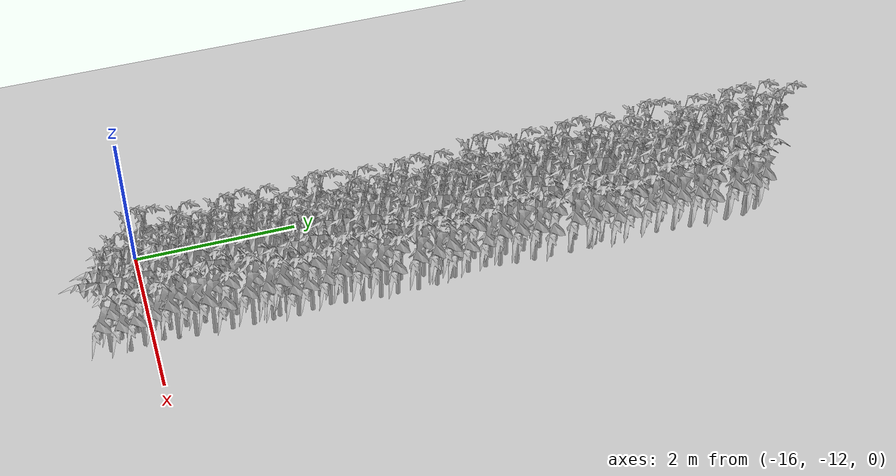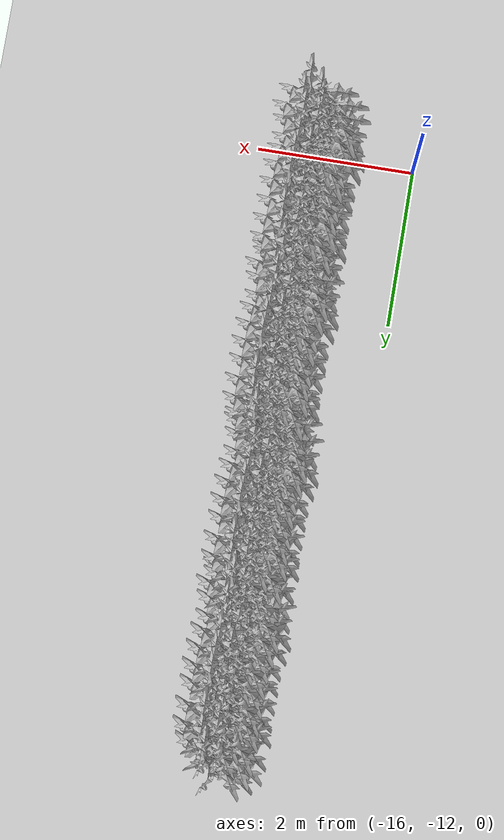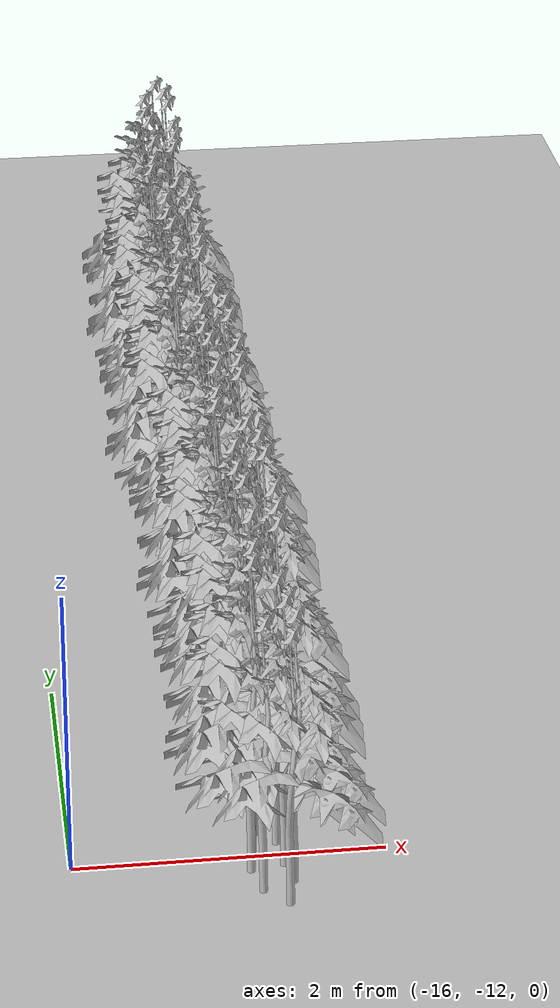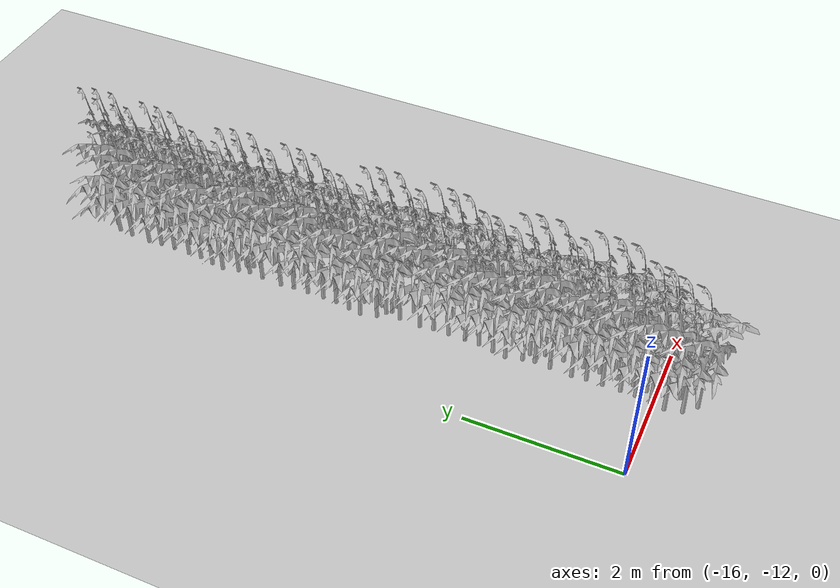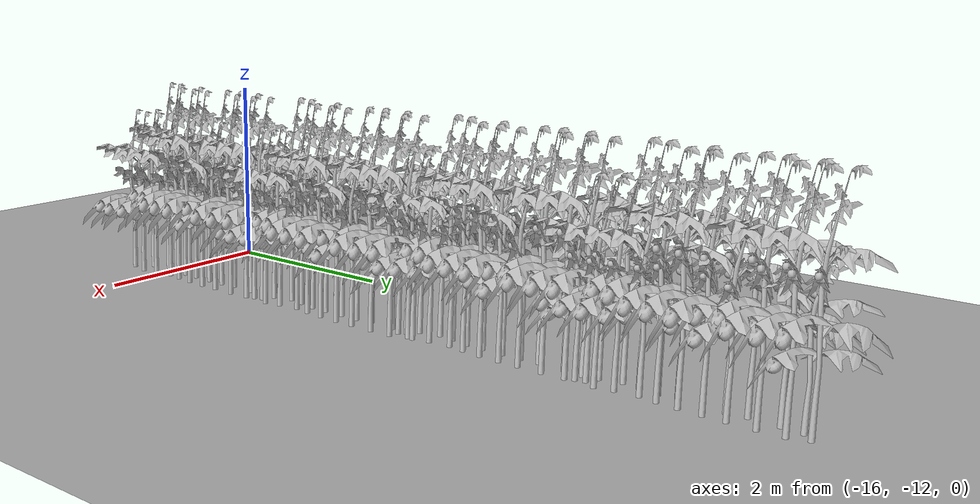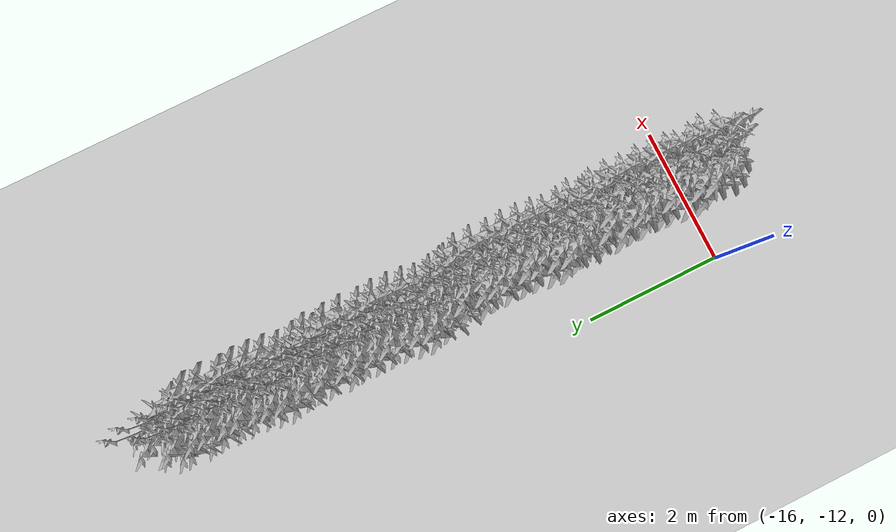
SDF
<sdf version="1.6">
 <world name="default">
  <model name="ground_plane">
   <static>1</static>
   <link name="link">
    <collision name="collision">
     <geometry><plane><normal>0 0 1</normal><size>100 100</size></plane></geometry>
     <surface>
      <contact><collide_bitmask>65535</collide_bitmask></contact>
      <friction><ode><mu>100</mu><mu2>50</mu2></ode></friction>
     </surface>
    </collision>
    <visual name="visual">
     <cast_shadows>0</cast_shadows>
     <geometry><plane><normal>0 0 1</normal><size>100 100</size></plane></geometry>
     <material>
      <script><uri>file://media/materials/scripts/gazebo.material</uri><name>Gazebo/Grey</name></script>
     </material>
    </visual>
   </link>
  </model>
  <model name="MIddle_Plant_3_2">
   <model name="MIddle_Plant_1">
    <model name="tomato_plant_big">
     <static>1</static>
     <link name="link">
      <collision name="collision">
       <pose>0 0 0 1.5708 -0 0</pose>
       <geometry><mesh><scale>0.5 0.6 0.5</scale><uri>model://stick/meshes/stick.dae</uri></mesh></geometry>
      </collision>
      <visual name="visual">
       <geometry>
        <mesh><scale>5e-06 5e-06 7e-06</scale><uri>model://tomato_plant_big/meshes/tomato-plant.dae</uri></mesh>
       </geometry>
      </visual>
     </link>
     <pose>-0.144318 -0.693607 -0 0 -0 0</pose>
    </model>
    <model name="tomato_plant_big_0">
     <static>1</static>
     <link name="link">
      <collision name="collision">
       <pose>0 0 0 1.5708 -0 0</pose>
       <geometry><mesh><scale>0.5 0.6 0.5</scale><uri>model://stick/meshes/stick.dae</uri></mesh></geometry>
      </collision>
      <visual name="visual">
       <geometry>
        <mesh><scale>5e-06 5e-06 7e-06</scale><uri>model://tomato_plant_big/meshes/tomato-plant.dae</uri></mesh>
       </geometry>
      </visual>
     </link>
     <pose>-0.11784 -0.519827 0 0 -0 0</pose>
    </model>
    <model name="tomato_plant_big_1">
     <static>1</static>
     <link name="link">
      <collision name="collision">
       <pose>0 0 0 1.5708 -0 0</pose>
       <geometry><mesh><scale>0.5 0.6 0.5</scale><uri>model://stick/meshes/stick.dae</uri></mesh></geometry>
      </collision>
      <visual name="visual">
       <geometry>
        <mesh><scale>5e-06 5e-06 7e-06</scale><uri>model://tomato_plant_big/meshes/tomato-plant.dae</uri></mesh>
       </geometry>
      </visual>
     </link>
     <pose>0.073755 -0.247584 0 0 -0 0</pose>
    </model>
    <model name="tomato_plant_big_10">
     <static>1</static>
     <link name="link">
      <collision name="collision">
       <pose>0 0 0 1.5708 -0 0</pose>
       <geometry><mesh><scale>0.5 0.6 0.5</scale><uri>model://stick/meshes/stick.dae</uri></mesh></geometry>
      </collision>
      <visual name="visual">
       <geometry>
        <mesh><scale>5e-06 5e-06 7e-06</scale><uri>model://tomato_plant_big/meshes/tomato-plant.dae</uri></mesh>
       </geometry>
      </visual>
     </link>
     <pose>0.037052 1.07094 0 0 -0 0</pose>
    </model>
    <model name="tomato_plant_big_2">
     <static>1</static>
     <link name="link">
      <collision name="collision">
       <pose>0 0 0 1.5708 -0 0</pose>
       <geometry><mesh><scale>0.5 0.6 0.5</scale><uri>model://stick/meshes/stick.dae</uri></mesh></geometry>
      </collision>
      <visual name="visual">
       <geometry>
        <mesh><scale>5e-06 5e-06 7e-06</scale><uri>model://tomato_plant_big/meshes/tomato-plant.dae</uri></mesh>
       </geometry>
      </visual>
     </link>
     <pose>-0.076926 -0.131165 0 0 -0 0</pose>
    </model>
    <model name="tomato_plant_big_3">
     <static>1</static>
     <link name="link">
      <collision name="collision">
       <pose>0 0 0 1.5708 -0 0</pose>
       <geometry><mesh><scale>0.5 0.6 0.5</scale><uri>model://stick/meshes/stick.dae</uri></mesh></geometry>
      </collision>
      <visual name="visual">
       <geometry>
        <mesh><scale>5e-06 5e-06 7e-06</scale><uri>model://tomato_plant_big/meshes/tomato-plant.dae</uri></mesh>
       </geometry>
      </visual>
     </link>
     <pose>0.093714 -0.038386 0 0 -0 0</pose>
    </model>
    <model name="tomato_plant_big_4">
     <static>1</static>
     <link name="link">
      <collision name="collision">
       <pose>0 0 0 1.5708 -0 0</pose>
       <geometry><mesh><scale>0.5 0.6 0.5</scale><uri>model://stick/meshes/stick.dae</uri></mesh></geometry>
      </collision>
      <visual name="visual">
       <geometry>
        <mesh><scale>5e-06 5e-06 7e-06</scale><uri>model://tomato_plant_big/meshes/tomato-plant.dae</uri></mesh>
       </geometry>
      </visual>
     </link>
     <pose>0.103117 0.184356 0 0 -0 0</pose>
    </model>
    <model name="tomato_plant_big_5">
     <static>1</static>
     <link name="link">
      <collision name="collision">
       <pose>0 0 0 1.5708 -0 0</pose>
       <geometry><mesh><scale>0.5 0.6 0.5</scale><uri>model://stick/meshes/stick.dae</uri></mesh></geometry>
      </collision>
      <visual name="visual">
       <geometry>
        <mesh><scale>5e-06 5e-06 7e-06</scale><uri>model://tomato_plant_big/meshes/tomato-plant.dae</uri></mesh>
       </geometry>
      </visual>
     </link>
     <pose>-0.074883 0.301479 0 0 -0 0</pose>
    </model>
    <model name="tomato_plant_big_6">
     <static>1</static>
     <link name="link">
      <collision name="collision">
       <pose>0 0 0 1.5708 -0 0</pose>
       <geometry><mesh><scale>0.5 0.6 0.5</scale><uri>model://stick/meshes/stick.dae</uri></mesh></geometry>
      </collision>
      <visual name="visual">
       <geometry>
        <mesh><scale>5e-06 5e-06 7e-06</scale><uri>model://tomato_plant_big/meshes/tomato-plant.dae</uri></mesh>
       </geometry>
      </visual>
     </link>
     <pose>-0.096921 0.484007 0 0 -0 0</pose>
    </model>
    <model name="tomato_plant_big_7">
     <static>1</static>
     <link name="link">
      <collision name="collision">
       <pose>0 0 0 1.5708 -0 0</pose>
       <geometry><mesh><scale>0.5 0.6 0.5</scale><uri>model://stick/meshes/stick.dae</uri></mesh></geometry>
      </collision>
      <visual name="visual">
       <geometry>
        <mesh><scale>5e-06 5e-06 7e-06</scale><uri>model://tomato_plant_big/meshes/tomato-plant.dae</uri></mesh>
       </geometry>
      </visual>
     </link>
     <pose>0.107491 0.653976 0 0 -0 0</pose>
    </model>
    <model name="tomato_plant_big_8">
     <static>1</static>
     <link name="link">
      <collision name="collision">
       <pose>0 0 0 1.5708 -0 0</pose>
       <geometry><mesh><scale>0.5 0.6 0.5</scale><uri>model://stick/meshes/stick.dae</uri></mesh></geometry>
      </collision>
      <visual name="visual">
       <geometry>
        <mesh><scale>5e-06 5e-06 7e-06</scale><uri>model://tomato_plant_big/meshes/tomato-plant.dae</uri></mesh>
       </geometry>
      </visual>
     </link>
     <pose>-0.07985 0.768549 0 0 -0 0</pose>
    </model>
    <model name="tomato_plant_big_9">
     <static>1</static>
     <link name="link">
      <collision name="collision">
       <pose>0 0 0 1.5708 -0 0</pose>
       <geometry><mesh><scale>0.5 0.6 0.5</scale><uri>model://stick/meshes/stick.dae</uri></mesh></geometry>
      </collision>
      <visual name="visual">
       <geometry>
        <mesh><scale>5e-06 5e-06 7e-06</scale><uri>model://tomato_plant_big/meshes/tomato-plant.dae</uri></mesh>
       </geometry>
      </visual>
     </link>
     <pose>0.098361 0.890852 0 0 -0 0</pose>
    </model>
    <model name="tomato_plant_medium">
     <static>1</static>
     <link name="link">
      <collision name="collision">
       <pose>0 0 0 1.5708 -0 0</pose>
       <geometry><mesh><scale>0.5 0.5 0.5</scale><uri>model://stick/meshes/stick.dae</uri></mesh></geometry>
      </collision>
      <visual name="visual">
       <geometry>
        <mesh><scale>5e-06 5e-06 6e-06</scale><uri>model://tomato_plant_medium/meshes/tomato-plant.dae</uri></mesh>
       </geometry>
      </visual>
     </link>
     <pose>0.056913 -1.05328 0 0 -0 0</pose>
    </model>
    <model name="tomato_plant_medium_0">
     <static>1</static>
     <link name="link">
      <collision name="collision">
       <pose>0 0 0 1.5708 -0 0</pose>
       <geometry><mesh><scale>0.5 0.5 0.5</scale><uri>model://stick/meshes/stick.dae</uri></mesh></geometry>
      </collision>
      <visual name="visual">
       <geometry>
        <mesh><scale>5e-06 5e-06 6e-06</scale><uri>model://tomato_plant_medium/meshes/tomato-plant.dae</uri></mesh>
       </geometry>
      </visual>
     </link>
     <pose>-0.092719 -0.905729 0 0 -0 0</pose>
    </model>
    <model name="tomato_plant_medium_1">
     <static>1</static>
     <link name="link">
      <collision name="collision">
       <pose>0 0 0 1.5708 -0 0</pose>
       <geometry><mesh><scale>0.5 0.5 0.5</scale><uri>model://stick/meshes/stick.dae</uri></mesh></geometry>
      </collision>
      <visual name="visual">
       <geometry>
        <mesh><scale>5e-06 5e-06 6e-06</scale><uri>model://tomato_plant_medium/meshes/tomato-plant.dae</uri></mesh>
       </geometry>
      </visual>
     </link>
     <pose>0.108962 -0.829637 0 0 -0 0</pose>
    </model>
    <model name="tomato_plant_medium_2">
     <static>1</static>
     <link name="link">
      <collision name="collision">
       <pose>0 0 0 1.5708 -0 0</pose>
       <geometry><mesh><scale>0.5 0.5 0.5</scale><uri>model://stick/meshes/stick.dae</uri></mesh></geometry>
      </collision>
      <visual name="visual">
       <geometry>
        <mesh><scale>5e-06 5e-06 6e-06</scale><uri>model://tomato_plant_medium/meshes/tomato-plant.dae</uri></mesh>
       </geometry>
      </visual>
     </link>
     <pose>0.071216 -0.652507 0 0 -0 0</pose>
    </model>
    <model name="tomato_plant_medium_3">
     <static>1</static>
     <link name="link">
      <collision name="collision">
       <pose>0 0 0 1.5708 -0 0</pose>
       <geometry><mesh><scale>0.5 0.5 0.5</scale><uri>model://stick/meshes/stick.dae</uri></mesh></geometry>
      </collision>
      <visual name="visual">
       <geometry>
        <mesh><scale>5e-06 5e-06 6e-06</scale><uri>model://tomato_plant_medium/meshes/tomato-plant.dae</uri></mesh>
       </geometry>
      </visual>
     </link>
     <pose>0.047335 -0.423046 0 0 -0 0</pose>
    </model>
    <model name="tomato_plant_medium_4">
     <static>1</static>
     <link name="link">
      <collision name="collision">
       <pose>0 0 0 1.5708 -0 0</pose>
       <geometry><mesh><scale>0.5 0.5 0.5</scale><uri>model://stick/meshes/stick.dae</uri></mesh></geometry>
      </collision>
      <visual name="visual">
       <geometry>
        <mesh><scale>5e-06 5e-06 6e-06</scale><uri>model://tomato_plant_medium/meshes/tomato-plant.dae</uri></mesh>
       </geometry>
      </visual>
     </link>
     <pose>-0.081012 -0.320324 0 0 -0 0</pose>
    </model>
    <model name="tomato_plant_medium_5">
     <static>1</static>
     <link name="link">
      <collision name="collision">
       <pose>0 0 0 1.5708 -0 0</pose>
       <geometry><mesh><scale>0.5 0.5 0.5</scale><uri>model://stick/meshes/stick.dae</uri></mesh></geometry>
      </collision>
      <visual name="visual">
       <geometry>
        <mesh><scale>5e-06 5e-06 6e-06</scale><uri>model://tomato_plant_medium/meshes/tomato-plant.dae</uri></mesh>
       </geometry>
      </visual>
     </link>
     <pose>-0.07452 0.095988 0 0 -0 0</pose>
    </model>
    <model name="tomato_plant_medium_6">
     <static>1</static>
     <link name="link">
      <collision name="collision">
       <pose>0 0 0 1.5708 -0 0</pose>
       <geometry><mesh><scale>0.5 0.5 0.5</scale><uri>model://stick/meshes/stick.dae</uri></mesh></geometry>
      </collision>
      <visual name="visual">
       <geometry>
        <mesh><scale>5e-06 5e-06 6e-06</scale><uri>model://tomato_plant_medium/meshes/tomato-plant.dae</uri></mesh>
       </geometry>
      </visual>
     </link>
     <pose>0.101424 0.395443 0 0 -0 0</pose>
    </model>
    <model name="tomato_plant_small">
     <static>1</static>
     <link name="link">
      <collision name="collision">
       <pose>0 0 0 1.5708 -0 0</pose>
       <geometry><mesh><scale>0.5 0.45 0.5</scale><uri>model://stick/meshes/stick.dae</uri></mesh></geometry>
      </collision>
      <visual name="visual">
       <geometry>
        <mesh><scale>5e-06 5e-06 5e-06</scale><uri>model://tomato_plant_small/meshes/tomato-plant.dae</uri></mesh>
       </geometry>
      </visual>
     </link>
     <pose>-0.060351 0.969512 0 0 -0 0</pose>
    </model>
    <static>0</static>
    <pose>0.040757 1.77284 0 0 -0 0</pose>
   </model>
   <model name="MIddle_Plant_2">
    <model name="MIddle_Plant_1">
     <model name="tomato_plant_big">
      <static>1</static>
      <link name="link">
       <collision name="collision">
        <pose>0 0 0 1.5708 -0 0</pose>
        <geometry><mesh><scale>0.5 0.6 0.5</scale><uri>model://stick/meshes/stick.dae</uri></mesh></geometry>
       </collision>
       <visual name="visual">
        <geometry>
         <mesh><scale>5e-06 5e-06 7e-06</scale><uri>model://tomato_plant_big/meshes/tomato-plant.dae</uri></mesh>
        </geometry>
       </visual>
      </link>
      <pose>-0.144318 -0.693607 -0 0 -0 0</pose>
     </model>
     <model name="tomato_plant_big_0">
      <static>1</static>
      <link name="link">
       <collision name="collision">
        <pose>0 0 0 1.5708 -0 0</pose>
        <geometry><mesh><scale>0.5 0.6 0.5</scale><uri>model://stick/meshes/stick.dae</uri></mesh></geometry>
       </collision>
       <visual name="visual">
        <geometry>
         <mesh><scale>5e-06 5e-06 7e-06</scale><uri>model://tomato_plant_big/meshes/tomato-plant.dae</uri></mesh>
        </geometry>
       </visual>
      </link>
      <pose>-0.11784 -0.519827 0 0 -0 0</pose>
     </model>
     <model name="tomato_plant_big_1">
      <static>1</static>
      <link name="link">
       <collision name="collision">
        <pose>0 0 0 1.5708 -0 0</pose>
        <geometry><mesh><scale>0.5 0.6 0.5</scale><uri>model://stick/meshes/stick.dae</uri></mesh></geometry>
       </collision>
       <visual name="visual">
        <geometry>
         <mesh><scale>5e-06 5e-06 7e-06</scale><uri>model://tomato_plant_big/meshes/tomato-plant.dae</uri></mesh>
        </geometry>
       </visual>
      </link>
      <pose>0.073755 -0.247584 0 0 -0 0</pose>
     </model>
     <model name="tomato_plant_big_10">
      <static>1</static>
      <link name="link">
       <collision name="collision">
        <pose>0 0 0 1.5708 -0 0</pose>
        <geometry><mesh><scale>0.5 0.6 0.5</scale><uri>model://stick/meshes/stick.dae</uri></mesh></geometry>
       </collision>
       <visual name="visual">
        <geometry>
         <mesh><scale>5e-06 5e-06 7e-06</scale><uri>model://tomato_plant_big/meshes/tomato-plant.dae</uri></mesh>
        </geometry>
       </visual>
      </link>
      <pose>0.037052 1.07094 0 0 -0 0</pose>
     </model>
     <model name="tomato_plant_big_2">
      <static>1</static>
      <link name="link">
       <collision name="collision">
        <pose>0 0 0 1.5708 -0 0</pose>
        <geometry><mesh><scale>0.5 0.6 0.5</scale><uri>model://stick/meshes/stick.dae</uri></mesh></geometry>
       </collision>
       <visual name="visual">
        <geometry>
         <mesh><scale>5e-06 5e-06 7e-06</scale><uri>model://tomato_plant_big/meshes/tomato-plant.dae</uri></mesh>
        </geometry>
       </visual>
      </link>
      <pose>-0.076926 -0.131165 0 0 -0 0</pose>
     </model>
     <model name="tomato_plant_big_3">
      <static>1</static>
      <link name="link">
       <collision name="collision">
        <pose>0 0 0 1.5708 -0 0</pose>
        <geometry><mesh><scale>0.5 0.6 0.5</scale><uri>model://stick/meshes/stick.dae</uri></mesh></geometry>
       </collision>
       <visual name="visual">
        <geometry>
         <mesh><scale>5e-06 5e-06 7e-06</scale><uri>model://tomato_plant_big/meshes/tomato-plant.dae</uri></mesh>
        </geometry>
       </visual>
      </link>
      <pose>0.093714 -0.038386 0 0 -0 0</pose>
     </model>
     <model name="tomato_plant_big_4">
      <static>1</static>
      <link name="link">
       <collision name="collision">
        <pose>0 0 0 1.5708 -0 0</pose>
        <geometry><mesh><scale>0.5 0.6 0.5</scale><uri>model://stick/meshes/stick.dae</uri></mesh></geometry>
       </collision>
       <visual name="visual">
        <geometry>
         <mesh><scale>5e-06 5e-06 7e-06</scale><uri>model://tomato_plant_big/meshes/tomato-plant.dae</uri></mesh>
        </geometry>
       </visual>
      </link>
      <pose>0.103117 0.184356 0 0 -0 0</pose>
     </model>
     <model name="tomato_plant_big_5">
      <static>1</static>
      <link name="link">
       <collision name="collision">
        <pose>0 0 0 1.5708 -0 0</pose>
        <geometry><mesh><scale>0.5 0.6 0.5</scale><uri>model://stick/meshes/stick.dae</uri></mesh></geometry>
       </collision>
       <visual name="visual">
        <geometry>
         <mesh><scale>5e-06 5e-06 7e-06</scale><uri>model://tomato_plant_big/meshes/tomato-plant.dae</uri></mesh>
        </geometry>
       </visual>
      </link>
      <pose>-0.074883 0.301479 0 0 -0 0</pose>
     </model>
     <model name="tomato_plant_big_6">
      <static>1</static>
      <link name="link">
       <collision name="collision">
        <pose>0 0 0 1.5708 -0 0</pose>
        <geometry><mesh><scale>0.5 0.6 0.5</scale><uri>model://stick/meshes/stick.dae</uri></mesh></geometry>
       </collision>
       <visual name="visual">
        <geometry>
         <mesh><scale>5e-06 5e-06 7e-06</scale><uri>model://tomato_plant_big/meshes/tomato-plant.dae</uri></mesh>
        </geometry>
       </visual>
      </link>
      <pose>-0.096921 0.484007 0 0 -0 0</pose>
     </model>
     <model name="tomato_plant_big_7">
      <static>1</static>
      <link name="link">
       <collision name="collision">
        <pose>0 0 0 1.5708 -0 0</pose>
        <geometry><mesh><scale>0.5 0.6 0.5</scale><uri>model://stick/meshes/stick.dae</uri></mesh></geometry>
       </collision>
       <visual name="visual">
        <geometry>
         <mesh><scale>5e-06 5e-06 7e-06</scale><uri>model://tomato_plant_big/meshes/tomato-plant.dae</uri></mesh>
        </geometry>
       </visual>
      </link>
      <pose>0.107491 0.653976 0 0 -0 0</pose>
     </model>
     <model name="tomato_plant_big_8">
      <static>1</static>
      <link name="link">
       <collision name="collision">
        <pose>0 0 0 1.5708 -0 0</pose>
        <geometry><mesh><scale>0.5 0.6 0.5</scale><uri>model://stick/meshes/stick.dae</uri></mesh></geometry>
       </collision>
       <visual name="visual">
        <geometry>
         <mesh><scale>5e-06 5e-06 7e-06</scale><uri>model://tomato_plant_big/meshes/tomato-plant.dae</uri></mesh>
        </geometry>
       </visual>
      </link>
      <pose>-0.07985 0.768549 0 0 -0 0</pose>
     </model>
     <model name="tomato_plant_big_9">
      <static>1</static>
      <link name="link">
       <collision name="collision">
        <pose>0 0 0 1.5708 -0 0</pose>
        <geometry><mesh><scale>0.5 0.6 0.5</scale><uri>model://stick/meshes/stick.dae</uri></mesh></geometry>
       </collision>
       <visual name="visual">
        <geometry>
         <mesh><scale>5e-06 5e-06 7e-06</scale><uri>model://tomato_plant_big/meshes/tomato-plant.dae</uri></mesh>
        </geometry>
       </visual>
      </link>
      <pose>0.098361 0.890852 0 0 -0 0</pose>
     </model>
     <model name="tomato_plant_medium">
      <static>1</static>
      <link name="link">
       <collision name="collision">
        <pose>0 0 0 1.5708 -0 0</pose>
        <geometry><mesh><scale>0.5 0.5 0.5</scale><uri>model://stick/meshes/stick.dae</uri></mesh></geometry>
       </collision>
       <visual name="visual">
        <geometry>
         <mesh><scale>5e-06 5e-06 6e-06</scale><uri>model://tomato_plant_medium/meshes/tomato-plant.dae</uri></mesh>
        </geometry>
       </visual>
      </link>
      <pose>0.056913 -1.05328 0 0 -0 0</pose>
     </model>
     <model name="tomato_plant_medium_0">
      <static>1</static>
      <link name="link">
       <collision name="collision">
        <pose>0 0 0 1.5708 -0 0</pose>
        <geometry><mesh><scale>0.5 0.5 0.5</scale><uri>model://stick/meshes/stick.dae</uri></mesh></geometry>
       </collision>
       <visual name="visual">
        <geometry>
         <mesh><scale>5e-06 5e-06 6e-06</scale><uri>model://tomato_plant_medium/meshes/tomato-plant.dae</uri></mesh>
        </geometry>
       </visual>
      </link>
      <pose>-0.092719 -0.905729 0 0 -0 0</pose>
     </model>
     <model name="tomato_plant_medium_1">
      <static>1</static>
      <link name="link">
       <collision name="collision">
        <pose>0 0 0 1.5708 -0 0</pose>
        <geometry><mesh><scale>0.5 0.5 0.5</scale><uri>model://stick/meshes/stick.dae</uri></mesh></geometry>
       </collision>
       <visual name="visual">
        <geometry>
         <mesh><scale>5e-06 5e-06 6e-06</scale><uri>model://tomato_plant_medium/meshes/tomato-plant.dae</uri></mesh>
        </geometry>
       </visual>
      </link>
      <pose>0.108962 -0.829637 0 0 -0 0</pose>
     </model>
     <model name="tomato_plant_medium_2">
      <static>1</static>
      <link name="link">
       <collision name="collision">
        <pose>0 0 0 1.5708 -0 0</pose>
        <geometry><mesh><scale>0.5 0.5 0.5</scale><uri>model://stick/meshes/stick.dae</uri></mesh></geometry>
       </collision>
       <visual name="visual">
        <geometry>
         <mesh><scale>5e-06 5e-06 6e-06</scale><uri>model://tomato_plant_medium/meshes/tomato-plant.dae</uri></mesh>
        </geometry>
       </visual>
      </link>
      <pose>0.071216 -0.652507 0 0 -0 0</pose>
     </model>
     <model name="tomato_plant_medium_3">
      <static>1</static>
      <link name="link">
       <collision name="collision">
        <pose>0 0 0 1.5708 -0 0</pose>
        <geometry><mesh><scale>0.5 0.5 0.5</scale><uri>model://stick/meshes/stick.dae</uri></mesh></geometry>
       </collision>
       <visual name="visual">
        <geometry>
         <mesh><scale>5e-06 5e-06 6e-06</scale><uri>model://tomato_plant_medium/meshes/tomato-plant.dae</uri></mesh>
        </geometry>
       </visual>
      </link>
      <pose>0.047335 -0.423046 0 0 -0 0</pose>
     </model>
     <model name="tomato_plant_medium_4">
      <static>1</static>
      <link name="link">
       <collision name="collision">
        <pose>0 0 0 1.5708 -0 0</pose>
        <geometry><mesh><scale>0.5 0.5 0.5</scale><uri>model://stick/meshes/stick.dae</uri></mesh></geometry>
       </collision>
       <visual name="visual">
        <geometry>
         <mesh><scale>5e-06 5e-06 6e-06</scale><uri>model://tomato_plant_medium/meshes/tomato-plant.dae</uri></mesh>
        </geometry>
       </visual>
      </link>
      <pose>-0.081012 -0.320324 0 0 -0 0</pose>
     </model>
     <model name="tomato_plant_medium_5">
      <static>1</static>
      <link name="link">
       <collision name="collision">
        <pose>0 0 0 1.5708 -0 0</pose>
        <geometry><mesh><scale>0.5 0.5 0.5</scale><uri>model://stick/meshes/stick.dae</uri></mesh></geometry>
       </collision>
       <visual name="visual">
        <geometry>
         <mesh><scale>5e-06 5e-06 6e-06</scale><uri>model://tomato_plant_medium/meshes/tomato-plant.dae</uri></mesh>
        </geometry>
       </visual>
      </link>
      <pose>-0.07452 0.095988 0 0 -0 0</pose>
     </model>
     <model name="tomato_plant_medium_6">
      <static>1</static>
      <link name="link">
       <collision name="collision">
        <pose>0 0 0 1.5708 -0 0</pose>
        <geometry><mesh><scale>0.5 0.5 0.5</scale><uri>model://stick/meshes/stick.dae</uri></mesh></geometry>
       </collision>
       <visual name="visual">
        <geometry>
         <mesh><scale>5e-06 5e-06 6e-06</scale><uri>model://tomato_plant_medium/meshes/tomato-plant.dae</uri></mesh>
        </geometry>
       </visual>
      </link>
      <pose>0.101424 0.395443 0 0 -0 0</pose>
     </model>
     <model name="tomato_plant_small">
      <static>1</static>
      <link name="link">
       <collision name="collision">
        <pose>0 0 0 1.5708 -0 0</pose>
        <geometry><mesh><scale>0.5 0.45 0.5</scale><uri>model://stick/meshes/stick.dae</uri></mesh></geometry>
       </collision>
       <visual name="visual">
        <geometry>
         <mesh><scale>5e-06 5e-06 5e-06</scale><uri>model://tomato_plant_small/meshes/tomato-plant.dae</uri></mesh>
        </geometry>
       </visual>
      </link>
      <pose>-0.060351 0.969512 0 0 -0 0</pose>
     </model>
     <static>0</static>
     <pose>0.763113 0.028917 0 0 -0 0</pose>
    </model>
    <model name="tomato_plant_big">
     <static>1</static>
     <link name="link">
      <collision name="collision">
       <pose>0 0 0 1.5708 -0 0</pose>
       <geometry><mesh><scale>0.5 0.6 0.5</scale><uri>model://stick/meshes/stick.dae</uri></mesh></geometry>
      </collision>
      <visual name="visual">
       <geometry>
        <mesh><scale>5e-06 5e-06 7e-06</scale><uri>model://tomato_plant_big/meshes/tomato-plant.dae</uri></mesh>
       </geometry>
      </visual>
     </link>
     <pose>0.613724 -2.69399 -0 0 -0 0</pose>
    </model>
    <model name="tomato_plant_big_0">
     <static>1</static>
     <link name="link">
      <collision name="collision">
       <pose>0 0 0 1.5708 -0 0</pose>
       <geometry><mesh><scale>0.5 0.6 0.5</scale><uri>model://stick/meshes/stick.dae</uri></mesh></geometry>
      </collision>
      <visual name="visual">
       <geometry>
        <mesh><scale>5e-06 5e-06 7e-06</scale><uri>model://tomato_plant_big/meshes/tomato-plant.dae</uri></mesh>
       </geometry>
      </visual>
     </link>
     <pose>0.640202 -2.52021 0 0 -0 0</pose>
    </model>
    <model name="tomato_plant_big_1">
     <static>1</static>
     <link name="link">
      <collision name="collision">
       <pose>0 0 0 1.5708 -0 0</pose>
       <geometry><mesh><scale>0.5 0.6 0.5</scale><uri>model://stick/meshes/stick.dae</uri></mesh></geometry>
      </collision>
      <visual name="visual">
       <geometry>
        <mesh><scale>5e-06 5e-06 7e-06</scale><uri>model://tomato_plant_big/meshes/tomato-plant.dae</uri></mesh>
       </geometry>
      </visual>
     </link>
     <pose>0.831797 -2.24797 0 0 -0 0</pose>
    </model>
    <model name="tomato_plant_big_10">
     <static>1</static>
     <link name="link">
      <collision name="collision">
       <pose>0 0 0 1.5708 -0 0</pose>
       <geometry><mesh><scale>0.5 0.6 0.5</scale><uri>model://stick/meshes/stick.dae</uri></mesh></geometry>
      </collision>
      <visual name="visual">
       <geometry>
        <mesh><scale>5e-06 5e-06 7e-06</scale><uri>model://tomato_plant_big/meshes/tomato-plant.dae</uri></mesh>
       </geometry>
      </visual>
     </link>
     <pose>0.795094 -0.929446 0 0 -0 0</pose>
    </model>
    <model name="tomato_plant_big_2">
     <static>1</static>
     <link name="link">
      <collision name="collision">
       <pose>0 0 0 1.5708 -0 0</pose>
       <geometry><mesh><scale>0.5 0.6 0.5</scale><uri>model://stick/meshes/stick.dae</uri></mesh></geometry>
      </collision>
      <visual name="visual">
       <geometry>
        <mesh><scale>5e-06 5e-06 7e-06</scale><uri>model://tomato_plant_big/meshes/tomato-plant.dae</uri></mesh>
       </geometry>
      </visual>
     </link>
     <pose>0.681116 -2.13155 0 0 -0 0</pose>
    </model>
    <model name="tomato_plant_big_3">
     <static>1</static>
     <link name="link">
      <collision name="collision">
       <pose>0 0 0 1.5708 -0 0</pose>
       <geometry><mesh><scale>0.5 0.6 0.5</scale><uri>model://stick/meshes/stick.dae</uri></mesh></geometry>
      </collision>
      <visual name="visual">
       <geometry>
        <mesh><scale>5e-06 5e-06 7e-06</scale><uri>model://tomato_plant_big/meshes/tomato-plant.dae</uri></mesh>
       </geometry>
      </visual>
     </link>
     <pose>0.851755 -2.03877 0 0 -0 0</pose>
    </model>
    <model name="tomato_plant_big_4">
     <static>1</static>
     <link name="link">
      <collision name="collision">
       <pose>0 0 0 1.5708 -0 0</pose>
       <geometry><mesh><scale>0.5 0.6 0.5</scale><uri>model://stick/meshes/stick.dae</uri></mesh></geometry>
      </collision>
      <visual name="visual">
       <geometry>
        <mesh><scale>5e-06 5e-06 7e-06</scale><uri>model://tomato_plant_big/meshes/tomato-plant.dae</uri></mesh>
       </geometry>
      </visual>
     </link>
     <pose>0.861158 -1.81603 0 0 -0 0</pose>
    </model>
    <model name="tomato_plant_big_5">
     <static>1</static>
     <link name="link">
      <collision name="collision">
       <pose>0 0 0 1.5708 -0 0</pose>
       <geometry><mesh><scale>0.5 0.6 0.5</scale><uri>model://stick/meshes/stick.dae</uri></mesh></geometry>
      </collision>
      <visual name="visual">
       <geometry>
        <mesh><scale>5e-06 5e-06 7e-06</scale><uri>model://tomato_plant_big/meshes/tomato-plant.dae</uri></mesh>
       </geometry>
      </visual>
     </link>
     <pose>0.683158 -1.69891 0 0 -0 0</pose>
    </model>
    <model name="tomato_plant_big_6">
     <static>1</static>
     <link name="link">
      <collision name="collision">
       <pose>0 0 0 1.5708 -0 0</pose>
       <geometry><mesh><scale>0.5 0.6 0.5</scale><uri>model://stick/meshes/stick.dae</uri></mesh></geometry>
      </collision>
      <visual name="visual">
       <geometry>
        <mesh><scale>5e-06 5e-06 7e-06</scale><uri>model://tomato_plant_big/meshes/tomato-plant.dae</uri></mesh>
       </geometry>
      </visual>
     </link>
     <pose>0.66112 -1.51638 0 0 -0 0</pose>
    </model>
    <model name="tomato_plant_big_7">
     <static>1</static>
     <link name="link">
      <collision name="collision">
       <pose>0 0 0 1.5708 -0 0</pose>
       <geometry><mesh><scale>0.5 0.6 0.5</scale><uri>model://stick/meshes/stick.dae</uri></mesh></geometry>
      </collision>
      <visual name="visual">
       <geometry>
        <mesh><scale>5e-06 5e-06 7e-06</scale><uri>model://tomato_plant_big/meshes/tomato-plant.dae</uri></mesh>
       </geometry>
      </visual>
     </link>
     <pose>0.865532 -1.34641 0 0 -0 0</pose>
    </model>
    <model name="tomato_plant_big_8">
     <static>1</static>
     <link name="link">
      <collision name="collision">
       <pose>0 0 0 1.5708 -0 0</pose>
       <geometry><mesh><scale>0.5 0.6 0.5</scale><uri>model://stick/meshes/stick.dae</uri></mesh></geometry>
      </collision>
      <visual name="visual">
       <geometry>
        <mesh><scale>5e-06 5e-06 7e-06</scale><uri>model://tomato_plant_big/meshes/tomato-plant.dae</uri></mesh>
       </geometry>
      </visual>
     </link>
     <pose>0.678192 -1.23184 0 0 -0 0</pose>
    </model>
    <model name="tomato_plant_big_9">
     <static>1</static>
     <link name="link">
      <collision name="collision">
       <pose>0 0 0 1.5708 -0 0</pose>
       <geometry><mesh><scale>0.5 0.6 0.5</scale><uri>model://stick/meshes/stick.dae</uri></mesh></geometry>
      </collision>
      <visual name="visual">
       <geometry>
        <mesh><scale>5e-06 5e-06 7e-06</scale><uri>model://tomato_plant_big/meshes/tomato-plant.dae</uri></mesh>
       </geometry>
      </visual>
     </link>
     <pose>0.856402 -1.10953 0 0 -0 0</pose>
    </model>
    <model name="tomato_plant_medium">
     <static>1</static>
     <link name="link">
      <collision name="collision">
       <pose>0 0 0 1.5708 -0 0</pose>
       <geometry><mesh><scale>0.5 0.5 0.5</scale><uri>model://stick/meshes/stick.dae</uri></mesh></geometry>
      </collision>
      <visual name="visual">
       <geometry>
        <mesh><scale>5e-06 5e-06 6e-06</scale><uri>model://tomato_plant_medium/meshes/tomato-plant.dae</uri></mesh>
       </geometry>
      </visual>
     </link>
     <pose>0.814955 -3.05367 0 0 -0 0</pose>
    </model>
    <model name="tomato_plant_medium_0">
     <static>1</static>
     <link name="link">
      <collision name="collision">
       <pose>0 0 0 1.5708 -0 0</pose>
       <geometry><mesh><scale>0.5 0.5 0.5</scale><uri>model://stick/meshes/stick.dae</uri></mesh></geometry>
      </collision>
      <visual name="visual">
       <geometry>
        <mesh><scale>5e-06 5e-06 6e-06</scale><uri>model://tomato_plant_medium/meshes/tomato-plant.dae</uri></mesh>
       </geometry>
      </visual>
     </link>
     <pose>0.665322 -2.90611 0 0 -0 0</pose>
    </model>
    <model name="tomato_plant_medium_1">
     <static>1</static>
     <link name="link">
      <collision name="collision">
       <pose>0 0 0 1.5708 -0 0</pose>
       <geometry><mesh><scale>0.5 0.5 0.5</scale><uri>model://stick/meshes/stick.dae</uri></mesh></geometry>
      </collision>
      <visual name="visual">
       <geometry>
        <mesh><scale>5e-06 5e-06 6e-06</scale><uri>model://tomato_plant_medium/meshes/tomato-plant.dae</uri></mesh>
       </geometry>
      </visual>
     </link>
     <pose>0.867004 -2.83002 0 0 -0 0</pose>
    </model>
    <model name="tomato_plant_medium_2">
     <static>1</static>
     <link name="link">
      <collision name="collision">
       <pose>0 0 0 1.5708 -0 0</pose>
       <geometry><mesh><scale>0.5 0.5 0.5</scale><uri>model://stick/meshes/stick.dae</uri></mesh></geometry>
      </collision>
      <visual name="visual">
       <geometry>
        <mesh><scale>5e-06 5e-06 6e-06</scale><uri>model://tomato_plant_medium/meshes/tomato-plant.dae</uri></mesh>
       </geometry>
      </visual>
     </link>
     <pose>0.829257 -2.65289 0 0 -0 0</pose>
    </model>
    <model name="tomato_plant_medium_3">
     <static>1</static>
     <link name="link">
      <collision name="collision">
       <pose>0 0 0 1.5708 -0 0</pose>
       <geometry><mesh><scale>0.5 0.5 0.5</scale><uri>model://stick/meshes/stick.dae</uri></mesh></geometry>
      </collision>
      <visual name="visual">
       <geometry>
        <mesh><scale>5e-06 5e-06 6e-06</scale><uri>model://tomato_plant_medium/meshes/tomato-plant.dae</uri></mesh>
       </geometry>
      </visual>
     </link>
     <pose>0.805376 -2.42343 0 0 -0 0</pose>
    </model>
    <model name="tomato_plant_medium_4">
     <static>1</static>
     <link name="link">
      <collision name="collision">
       <pose>0 0 0 1.5708 -0 0</pose>
       <geometry><mesh><scale>0.5 0.5 0.5</scale><uri>model://stick/meshes/stick.dae</uri></mesh></geometry>
      </collision>
      <visual name="visual">
       <geometry>
        <mesh><scale>5e-06 5e-06 6e-06</scale><uri>model://tomato_plant_medium/meshes/tomato-plant.dae</uri></mesh>
       </geometry>
      </visual>
     </link>
     <pose>0.67703 -2.32071 0 0 -0 0</pose>
    </model>
    <model name="tomato_plant_medium_5">
     <static>1</static>
     <link name="link">
      <collision name="collision">
       <pose>0 0 0 1.5708 -0 0</pose>
       <geometry><mesh><scale>0.5 0.5 0.5</scale><uri>model://stick/meshes/stick.dae</uri></mesh></geometry>
      </collision>
      <visual name="visual">
       <geometry>
        <mesh><scale>5e-06 5e-06 6e-06</scale><uri>model://tomato_plant_medium/meshes/tomato-plant.dae</uri></mesh>
       </geometry>
      </visual>
     </link>
     <pose>0.683522 -1.9044 0 0 -0 0</pose>
    </model>
    <model name="tomato_plant_medium_6">
     <static>1</static>
     <link name="link">
      <collision name="collision">
       <pose>0 0 0 1.5708 -0 0</pose>
       <geometry><mesh><scale>0.5 0.5 0.5</scale><uri>model://stick/meshes/stick.dae</uri></mesh></geometry>
      </collision>
      <visual name="visual">
       <geometry>
        <mesh><scale>5e-06 5e-06 6e-06</scale><uri>model://tomato_plant_medium/meshes/tomato-plant.dae</uri></mesh>
       </geometry>
      </visual>
     </link>
     <pose>0.859466 -1.60494 0 0 -0 0</pose>
    </model>
    <model name="tomato_plant_small">
     <static>1</static>
     <link name="link">
      <collision name="collision">
       <pose>0 0 0 1.5708 -0 0</pose>
       <geometry><mesh><scale>0.5 0.45 0.5</scale><uri>model://stick/meshes/stick.dae</uri></mesh></geometry>
      </collision>
      <visual name="visual">
       <geometry>
        <mesh><scale>5e-06 5e-06 5e-06</scale><uri>model://tomato_plant_small/meshes/tomato-plant.dae</uri></mesh>
       </geometry>
      </visual>
     </link>
     <pose>0.697691 -1.03087 0 0 -0 0</pose>
    </model>
    <static>0</static>
    <pose>-0.78485 5.73439 0 0 -0 0</pose>
   </model>
   <model name="tomato_plant_big">
    <static>1</static>
    <link name="link">
     <collision name="collision">
      <pose>0 0 0 1.5708 -0 0</pose>
      <geometry><mesh><scale>0.5 0.6 0.5</scale><uri>model://stick/meshes/stick.dae</uri></mesh></geometry>
     </collision>
     <visual name="visual">
      <geometry>
       <mesh><scale>5e-06 5e-06 7e-06</scale><uri>model://tomato_plant_big/meshes/tomato-plant.dae</uri></mesh>
      </geometry>
     </visual>
    </link>
    <pose>-0.108632 -0.950068 -0 0 -0 0</pose>
   </model>
   <model name="tomato_plant_big_0">
    <static>1</static>
    <link name="link">
     <collision name="collision">
      <pose>0 0 0 1.5708 -0 0</pose>
      <geometry><mesh><scale>0.5 0.6 0.5</scale><uri>model://stick/meshes/stick.dae</uri></mesh></geometry>
     </collision>
     <visual name="visual">
      <geometry>
       <mesh><scale>5e-06 5e-06 7e-06</scale><uri>model://tomato_plant_big/meshes/tomato-plant.dae</uri></mesh>
      </geometry>
     </visual>
    </link>
    <pose>-0.082154 -0.776288 0 0 -0 0</pose>
   </model>
   <model name="tomato_plant_big_1">
    <static>1</static>
    <link name="link">
     <collision name="collision">
      <pose>0 0 0 1.5708 -0 0</pose>
      <geometry><mesh><scale>0.5 0.6 0.5</scale><uri>model://stick/meshes/stick.dae</uri></mesh></geometry>
     </collision>
     <visual name="visual">
      <geometry>
       <mesh><scale>5e-06 5e-06 7e-06</scale><uri>model://tomato_plant_big/meshes/tomato-plant.dae</uri></mesh>
      </geometry>
     </visual>
    </link>
    <pose>0.109441 -0.504045 0 0 -0 0</pose>
   </model>
   <model name="tomato_plant_big_10">
    <static>1</static>
    <link name="link">
     <collision name="collision">
      <pose>0 0 0 1.5708 -0 0</pose>
      <geometry><mesh><scale>0.5 0.6 0.5</scale><uri>model://stick/meshes/stick.dae</uri></mesh></geometry>
     </collision>
     <visual name="visual">
      <geometry>
       <mesh><scale>5e-06 5e-06 7e-06</scale><uri>model://tomato_plant_big/meshes/tomato-plant.dae</uri></mesh>
      </geometry>
     </visual>
    </link>
    <pose>0.072738 0.814477 0 0 -0 0</pose>
   </model>
   <model name="tomato_plant_big_2">
    <static>1</static>
    <link name="link">
     <collision name="collision">
      <pose>0 0 0 1.5708 -0 0</pose>
      <geometry><mesh><scale>0.5 0.6 0.5</scale><uri>model://stick/meshes/stick.dae</uri></mesh></geometry>
     </collision>
     <visual name="visual">
      <geometry>
       <mesh><scale>5e-06 5e-06 7e-06</scale><uri>model://tomato_plant_big/meshes/tomato-plant.dae</uri></mesh>
      </geometry>
     </visual>
    </link>
    <pose>-0.04124 -0.387626 0 0 -0 0</pose>
   </model>
   <model name="tomato_plant_big_3">
    <static>1</static>
    <link name="link">
     <collision name="collision">
      <pose>0 0 0 1.5708 -0 0</pose>
      <geometry><mesh><scale>0.5 0.6 0.5</scale><uri>model://stick/meshes/stick.dae</uri></mesh></geometry>
     </collision>
     <visual name="visual">
      <geometry>
       <mesh><scale>5e-06 5e-06 7e-06</scale><uri>model://tomato_plant_big/meshes/tomato-plant.dae</uri></mesh>
      </geometry>
     </visual>
    </link>
    <pose>0.129399 -0.294847 0 0 -0 0</pose>
   </model>
   <model name="tomato_plant_big_4">
    <static>1</static>
    <link name="link">
     <collision name="collision">
      <pose>0 0 0 1.5708 -0 0</pose>
      <geometry><mesh><scale>0.5 0.6 0.5</scale><uri>model://stick/meshes/stick.dae</uri></mesh></geometry>
     </collision>
     <visual name="visual">
      <geometry>
       <mesh><scale>5e-06 5e-06 7e-06</scale><uri>model://tomato_plant_big/meshes/tomato-plant.dae</uri></mesh>
      </geometry>
     </visual>
    </link>
    <pose>0.138802 -0.072105 0 0 -0 0</pose>
   </model>
   <model name="tomato_plant_big_5">
    <static>1</static>
    <link name="link">
     <collision name="collision">
      <pose>0 0 0 1.5708 -0 0</pose>
      <geometry><mesh><scale>0.5 0.6 0.5</scale><uri>model://stick/meshes/stick.dae</uri></mesh></geometry>
     </collision>
     <visual name="visual">
      <geometry>
       <mesh><scale>5e-06 5e-06 7e-06</scale><uri>model://tomato_plant_big/meshes/tomato-plant.dae</uri></mesh>
      </geometry>
     </visual>
    </link>
    <pose>-0.039198 0.045018 0 0 -0 0</pose>
   </model>
   <model name="tomato_plant_big_6">
    <static>1</static>
    <link name="link">
     <collision name="collision">
      <pose>0 0 0 1.5708 -0 0</pose>
      <geometry><mesh><scale>0.5 0.6 0.5</scale><uri>model://stick/meshes/stick.dae</uri></mesh></geometry>
     </collision>
     <visual name="visual">
      <geometry>
       <mesh><scale>5e-06 5e-06 7e-06</scale><uri>model://tomato_plant_big/meshes/tomato-plant.dae</uri></mesh>
      </geometry>
     </visual>
    </link>
    <pose>-0.061236 0.227546 0 0 -0 0</pose>
   </model>
   <model name="tomato_plant_big_7">
    <static>1</static>
    <link name="link">
     <collision name="collision">
      <pose>0 0 0 1.5708 -0 0</pose>
      <geometry><mesh><scale>0.5 0.6 0.5</scale><uri>model://stick/meshes/stick.dae</uri></mesh></geometry>
     </collision>
     <visual name="visual">
      <geometry>
       <mesh><scale>5e-06 5e-06 7e-06</scale><uri>model://tomato_plant_big/meshes/tomato-plant.dae</uri></mesh>
      </geometry>
     </visual>
    </link>
    <pose>0.143176 0.397515 0 0 -0 0</pose>
   </model>
   <model name="tomato_plant_big_8">
    <static>1</static>
    <link name="link">
     <collision name="collision">
      <pose>0 0 0 1.5708 -0 0</pose>
      <geometry><mesh><scale>0.5 0.6 0.5</scale><uri>model://stick/meshes/stick.dae</uri></mesh></geometry>
     </collision>
     <visual name="visual">
      <geometry>
       <mesh><scale>5e-06 5e-06 7e-06</scale><uri>model://tomato_plant_big/meshes/tomato-plant.dae</uri></mesh>
      </geometry>
     </visual>
    </link>
    <pose>-0.044164 0.512088 0 0 -0 0</pose>
   </model>
   <model name="tomato_plant_big_9">
    <static>1</static>
    <link name="link">
     <collision name="collision">
      <pose>0 0 0 1.5708 -0 0</pose>
      <geometry><mesh><scale>0.5 0.6 0.5</scale><uri>model://stick/meshes/stick.dae</uri></mesh></geometry>
     </collision>
     <visual name="visual">
      <geometry>
       <mesh><scale>5e-06 5e-06 7e-06</scale><uri>model://tomato_plant_big/meshes/tomato-plant.dae</uri></mesh>
      </geometry>
     </visual>
    </link>
    <pose>0.134046 0.634391 0 0 -0 0</pose>
   </model>
   <model name="tomato_plant_medium">
    <static>1</static>
    <link name="link">
     <collision name="collision">
      <pose>0 0 0 1.5708 -0 0</pose>
      <geometry><mesh><scale>0.5 0.5 0.5</scale><uri>model://stick/meshes/stick.dae</uri></mesh></geometry>
     </collision>
     <visual name="visual">
      <geometry>
       <mesh><scale>5e-06 5e-06 6e-06</scale><uri>model://tomato_plant_medium/meshes/tomato-plant.dae</uri></mesh>
      </geometry>
     </visual>
    </link>
    <pose>0.092599 -1.30974 0 0 -0 0</pose>
   </model>
   <model name="tomato_plant_medium_0">
    <static>1</static>
    <link name="link">
     <collision name="collision">
      <pose>0 0 0 1.5708 -0 0</pose>
      <geometry><mesh><scale>0.5 0.5 0.5</scale><uri>model://stick/meshes/stick.dae</uri></mesh></geometry>
     </collision>
     <visual name="visual">
      <geometry>
       <mesh><scale>5e-06 5e-06 6e-06</scale><uri>model://tomato_plant_medium/meshes/tomato-plant.dae</uri></mesh>
      </geometry>
     </visual>
    </link>
    <pose>-0.057034 -1.16219 0 0 -0 0</pose>
   </model>
   <model name="tomato_plant_medium_1">
    <static>1</static>
    <link name="link">
     <collision name="collision">
      <pose>0 0 0 1.5708 -0 0</pose>
      <geometry><mesh><scale>0.5 0.5 0.5</scale><uri>model://stick/meshes/stick.dae</uri></mesh></geometry>
     </collision>
     <visual name="visual">
      <geometry>
       <mesh><scale>5e-06 5e-06 6e-06</scale><uri>model://tomato_plant_medium/meshes/tomato-plant.dae</uri></mesh>
      </geometry>
     </visual>
    </link>
    <pose>0.144648 -1.0861 0 0 -0 0</pose>
   </model>
   <model name="tomato_plant_medium_2">
    <static>1</static>
    <link name="link">
     <collision name="collision">
      <pose>0 0 0 1.5708 -0 0</pose>
      <geometry><mesh><scale>0.5 0.5 0.5</scale><uri>model://stick/meshes/stick.dae</uri></mesh></geometry>
     </collision>
     <visual name="visual">
      <geometry>
       <mesh><scale>5e-06 5e-06 6e-06</scale><uri>model://tomato_plant_medium/meshes/tomato-plant.dae</uri></mesh>
      </geometry>
     </visual>
    </link>
    <pose>0.106901 -0.908968 0 0 -0 0</pose>
   </model>
   <model name="tomato_plant_medium_3">
    <static>1</static>
    <link name="link">
     <collision name="collision">
      <pose>0 0 0 1.5708 -0 0</pose>
      <geometry><mesh><scale>0.5 0.5 0.5</scale><uri>model://stick/meshes/stick.dae</uri></mesh></geometry>
     </collision>
     <visual name="visual">
      <geometry>
       <mesh><scale>5e-06 5e-06 6e-06</scale><uri>model://tomato_plant_medium/meshes/tomato-plant.dae</uri></mesh>
      </geometry>
     </visual>
    </link>
    <pose>0.08302 -0.679508 0 0 -0 0</pose>
   </model>
   <model name="tomato_plant_medium_4">
    <static>1</static>
    <link name="link">
     <collision name="collision">
      <pose>0 0 0 1.5708 -0 0</pose>
      <geometry><mesh><scale>0.5 0.5 0.5</scale><uri>model://stick/meshes/stick.dae</uri></mesh></geometry>
     </collision>
     <visual name="visual">
      <geometry>
       <mesh><scale>5e-06 5e-06 6e-06</scale><uri>model://tomato_plant_medium/meshes/tomato-plant.dae</uri></mesh>
      </geometry>
     </visual>
    </link>
    <pose>-0.045326 -0.576785 0 0 -0 0</pose>
   </model>
   <model name="tomato_plant_medium_5">
    <static>1</static>
    <link name="link">
     <collision name="collision">
      <pose>0 0 0 1.5708 -0 0</pose>
      <geometry><mesh><scale>0.5 0.5 0.5</scale><uri>model://stick/meshes/stick.dae</uri></mesh></geometry>
     </collision>
     <visual name="visual">
      <geometry>
       <mesh><scale>5e-06 5e-06 6e-06</scale><uri>model://tomato_plant_medium/meshes/tomato-plant.dae</uri></mesh>
      </geometry>
     </visual>
    </link>
    <pose>-0.038834 -0.160473 0 0 -0 0</pose>
   </model>
   <model name="tomato_plant_medium_6">
    <static>1</static>
    <link name="link">
     <collision name="collision">
      <pose>0 0 0 1.5708 -0 0</pose>
      <geometry><mesh><scale>0.5 0.5 0.5</scale><uri>model://stick/meshes/stick.dae</uri></mesh></geometry>
     </collision>
     <visual name="visual">
      <geometry>
       <mesh><scale>5e-06 5e-06 6e-06</scale><uri>model://tomato_plant_medium/meshes/tomato-plant.dae</uri></mesh>
      </geometry>
     </visual>
    </link>
    <pose>0.13711 0.138982 0 0 -0 0</pose>
   </model>
   <model name="tomato_plant_small">
    <static>1</static>
    <link name="link">
     <collision name="collision">
      <pose>0 0 0 1.5708 -0 0</pose>
      <geometry><mesh><scale>0.5 0.45 0.5</scale><uri>model://stick/meshes/stick.dae</uri></mesh></geometry>
     </collision>
     <visual name="visual">
      <geometry>
       <mesh><scale>5e-06 5e-06 5e-06</scale><uri>model://tomato_plant_small/meshes/tomato-plant.dae</uri></mesh>
      </geometry>
     </visual>
    </link>
    <pose>-0.024665 0.713051 0 0 -0 0</pose>
   </model>
   <static>0</static>
   <pose>-14.7597 -11.2138 0 0 -0 0</pose>
  </model>
 </world>
</sdf>
